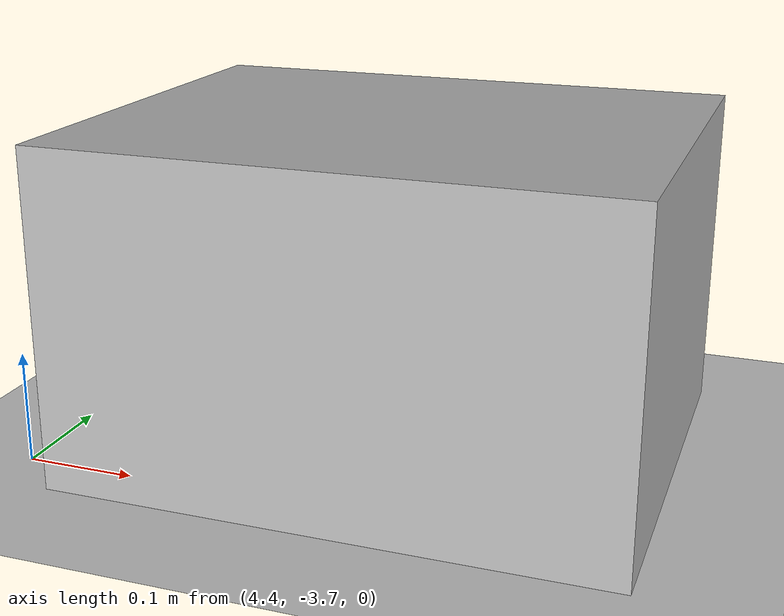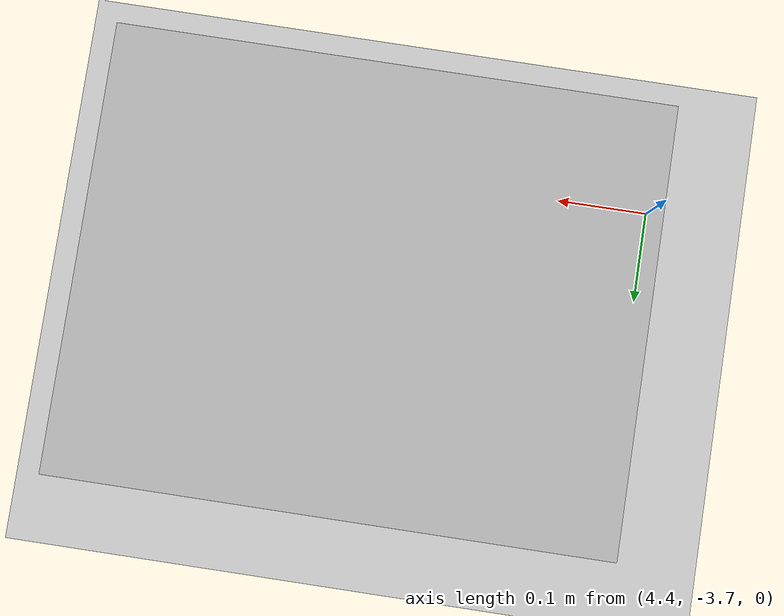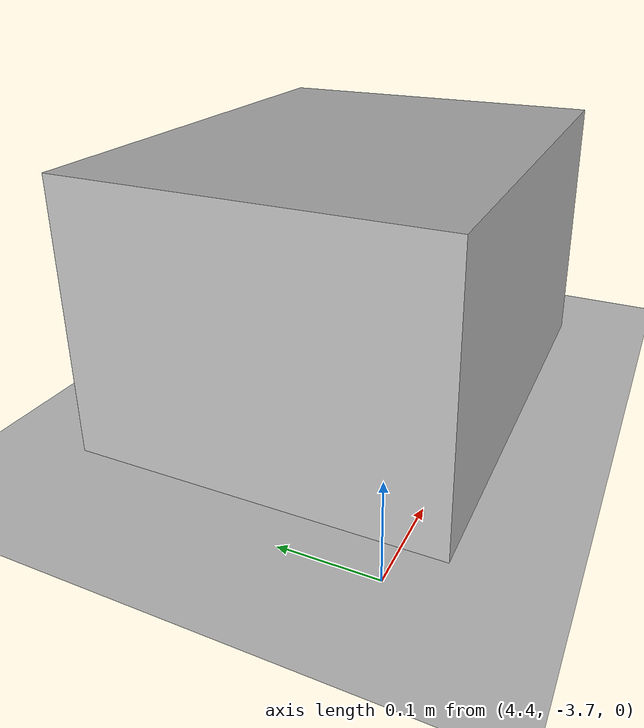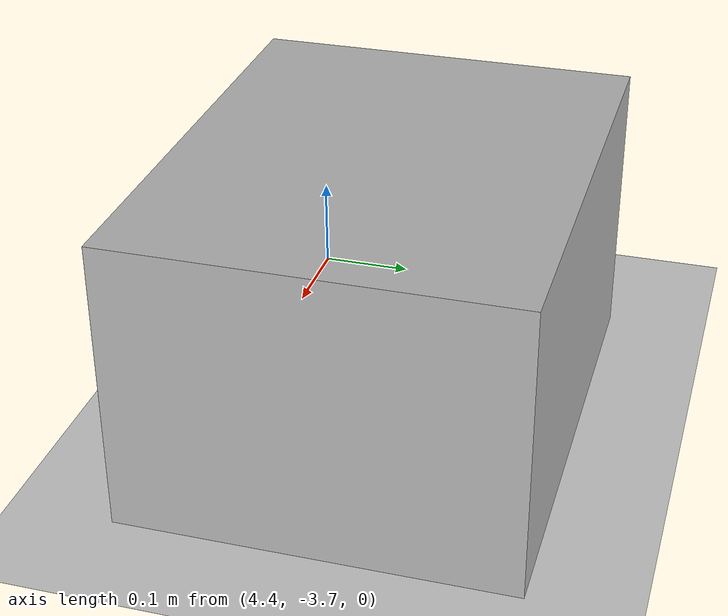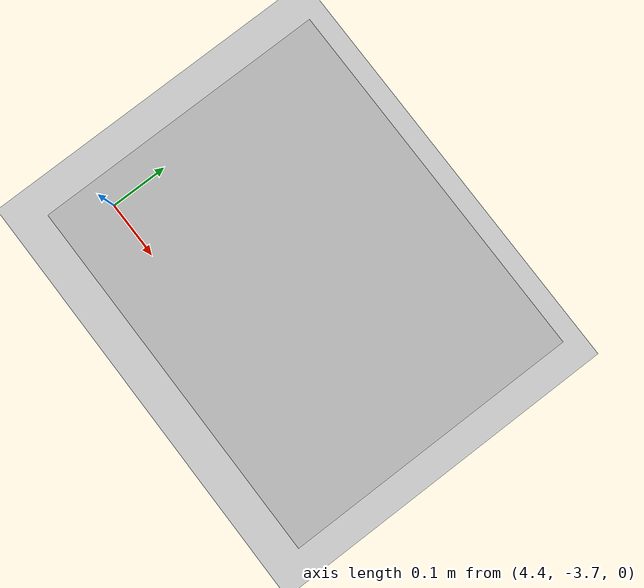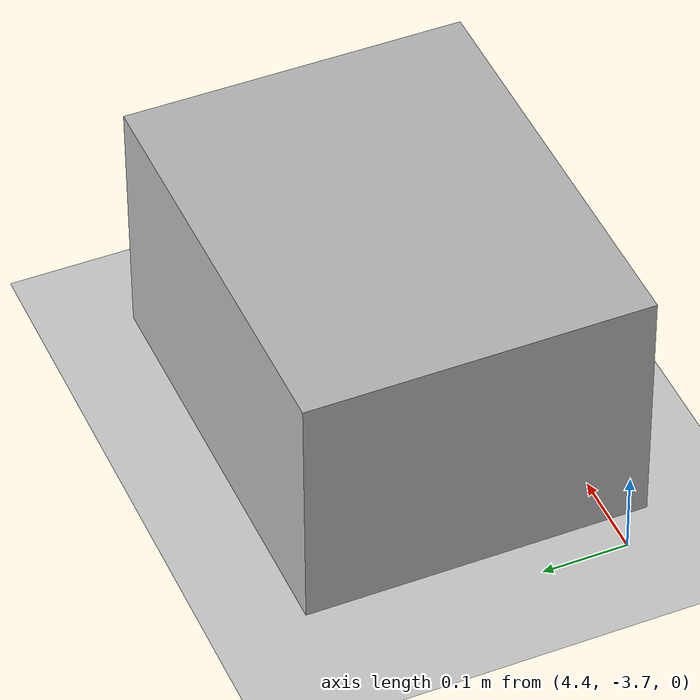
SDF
<sdf version="1.6">
 <world name="default">
  <light name="sun" type="directional">
   <pose>0 0 10 0 -0 0</pose>
   <diffuse>0.8 0.8 0.8 1</diffuse>
   <specular>0.2 0.2 0.2 1</specular>
   <attenuation>
    <range>1000</range>
    <constant>0.9</constant>
    <linear>0.01</linear>
    <quadratic>0.001</quadratic>
   </attenuation>
   <direction>-0.5 0.1 -0.9</direction>
  </light>
  <model name="ground_plane">
   <static>1</static>
   <link name="link">
    <collision name="collision">
     <geometry><plane><normal>0 0 1</normal><size>50 50</size></plane></geometry>
     <surface><friction><ode><mu>100</mu><mu2>50</mu2></ode></friction></surface>
    </collision>
    <visual name="visual">
     <cast_shadows>0</cast_shadows>
     <geometry><plane><normal>0 0 1</normal><size>100 100</size></plane></geometry>
     <material>
      <script><uri>file://media/materials/scripts/gazebo.material</uri><name>Gazebo/Grey</name></script>
     </material>
    </visual>
    <velocity_decay><linear>0</linear><angular>0</angular></velocity_decay>
   </link>
  </model>
  <physics name="default_physics" default="0" type="ode">
   <max_step_size>0.001</max_step_size>
   <real_time_factor>1</real_time_factor>
   <real_time_update_rate>1000</real_time_update_rate>
  </physics>
  <scene><ambient>0.4 0.4 0.4 1</ambient><background>0.7 0.7 0.7 1</background><shadows>0</shadows></scene>
  <spherical_coordinates>
   <surface_model>EARTH_WGS84</surface_model>
   <latitude_deg>0</latitude_deg>
   <longitude_deg>0</longitude_deg>
   <elevation>0</elevation>
   <heading_deg>0</heading_deg>
  </spherical_coordinates>
  <model name="cardboard_box">
   <pose>4.69362 -3.54434 0.149 0 -0 0</pose>
   <link name="link">
    <inertial>
     <mass>2</mass>
     <inertia>
      <ixx>0.0416667</ixx>
      <ixy>0</ixy>
      <ixz>0</ixz>
      <iyy>0.0566667</iyy>
      <iyz>0</iyz>
      <izz>0.0683333</izz>
     </inertia>
    </inertial>
    <collision name="collision">
     <geometry><box><size>0.5 0.4 0.3</size></box></geometry>
     <surface>
      <friction><ode><mu>1</mu><mu2>1</mu2></ode></friction>
      <contact><ode><kp>1e+07</kp><kd>1</kd><min_depth>0.001</min_depth><max_vel>0.1</max_vel></ode></contact>
     </surface>
    </collision>
    <visual name="visual">
     <pose>0 0 -0.15 0 -0 0</pose>
     <geometry>
      <mesh><uri>model://cardboard_box/meshes/cardboard_box.dae</uri><scale>1.25932 1.00746 0.755591</scale></mesh>
     </geometry>
    </visual>
    <velocity_decay><linear>0</linear><angular>0</angular></velocity_decay>
   </link>
   <static>0</static>
  </model>
  <gravity>0 0 -9.8</gravity>
  <magnetic_field>6e-06 2.3e-05 -4.2e-05</magnetic_field>
  <atmosphere type="adiabatic"/>
 </world>
</sdf>
